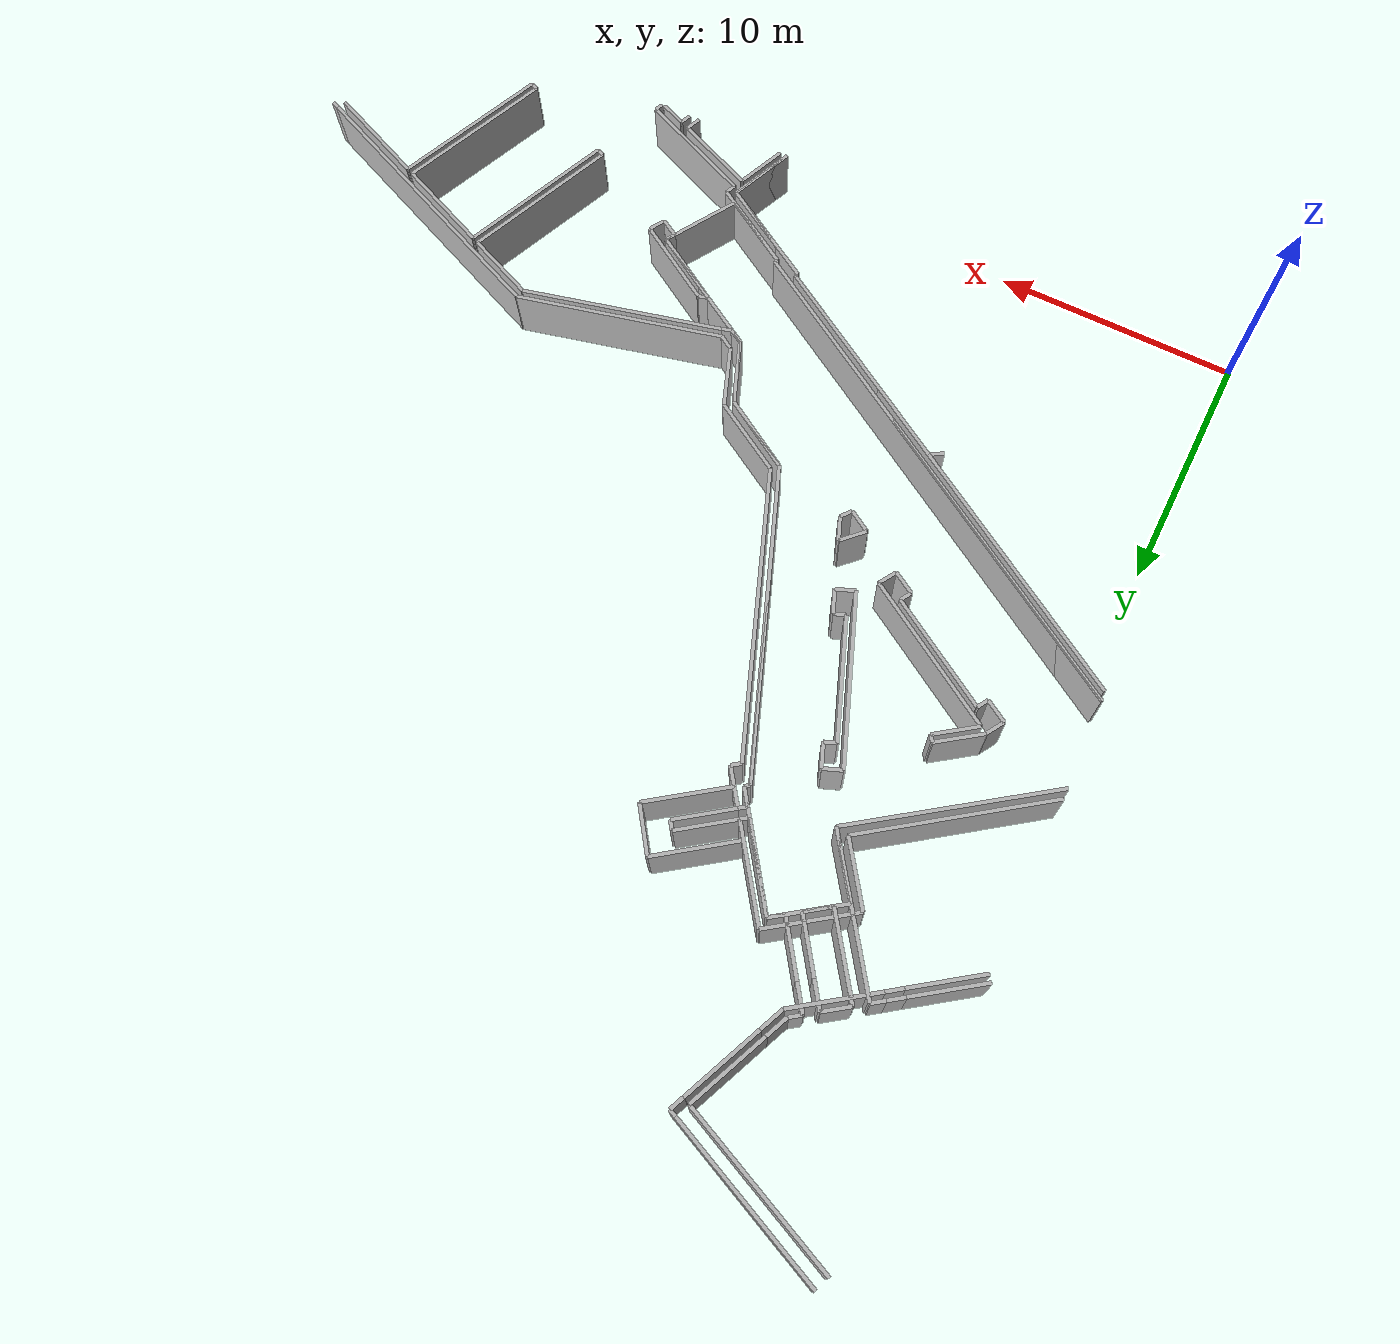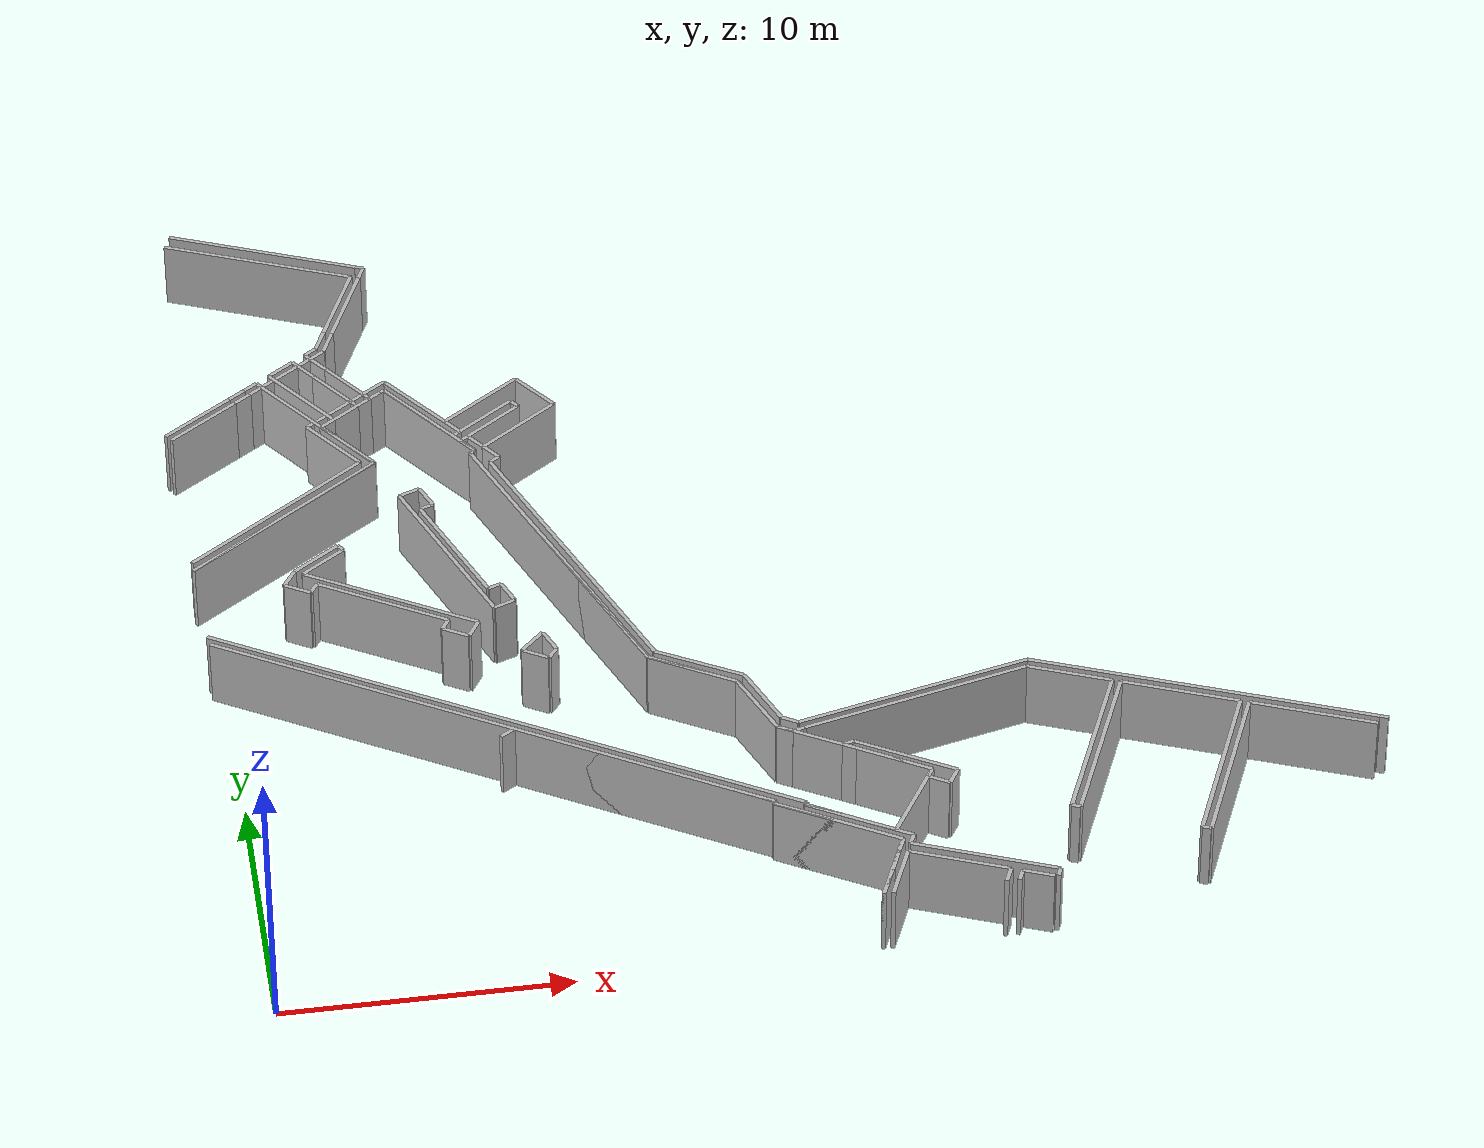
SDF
<sdf version="1.6">
 <model name="sps_1300">
  <static>1</static>
  <allow_auto_disable>0</allow_auto_disable>
  <link name="Wall177">
   <collision name="collision"><geometry><box><size>3.49937 0.15 2.5</size></box></geometry></collision>
   <visual name="visual">
    <geometry><box><size>3.49937 0.15 2.5</size></box></geometry>
    <transparency>0.0</transparency>
   </visual>
   <pose>22.96 1.26021 1.25 0 0 -0.398962</pose>
  </link>
  <link name="Wall178">
   <collision name="collision"><geometry><box><size>4.15 0.15 2.5</size></box></geometry></collision>
   <visual name="visual">
    <geometry><box><size>4.15 0.15 2.5</size></box></geometry>
    <transparency>0.0</transparency>
   </visual>
   <pose>31.8935 8.48128 1.25 0 0 -0.399139</pose>
  </link>
  <link name="Wall491">
   <collision name="collision"><geometry><box><size>3.29186 0.15 2.5</size></box></geometry></collision>
   <visual name="visual">
    <geometry><box><size>3.29186 0.15 2.5</size></box></geometry>
    <transparency>0.0</transparency>
   </visual>
   <pose>15.6525 12.1792 1.25 0 0 -0.547294</pose>
  </link>
  <link name="Wall492">
   <collision name="collision"><geometry><box><size>0.125288 0.15 2.5</size></box></geometry></collision>
   <visual name="visual">
    <geometry><box><size>0.125288 0.15 2.5</size></box></geometry>
    <transparency>0.0</transparency>
   </visual>
   <pose>17.3615 5.01298 1.25 0 -0 1.02361</pose>
  </link>
  <link name="Wall493">
   <collision name="collision"><geometry><box><size>20.9807 0.15 2.5</size></box></geometry></collision>
   <visual name="visual">
    <geometry><box><size>20.9807 0.15 2.5</size></box></geometry>
    <transparency>0.0</transparency>
   </visual>
   <pose>8.44585 10.5416 1.25 0 -0 2.59249</pose>
  </link>
  <link name="Wall496">
   <collision name="collision"><geometry><box><size>22.2262 0.15 2.5</size></box></geometry></collision>
   <visual name="visual">
    <geometry><box><size>22.2262 0.15 2.5</size></box></geometry>
    <transparency>0.0</transparency>
   </visual>
   <pose>8.93023 10.6325 1.25 0 -0 2.59411</pose>
  </link>
  <link name="Wall497">
   <collision name="collision"><geometry><box><size>4.63862 0.15 2.5</size></box></geometry></collision>
   <visual name="visual">
    <geometry><box><size>4.63862 0.15 2.5</size></box></geometry>
    <transparency>0.0</transparency>
   </visual>
   <pose>19.3144 3.7607 1.25 0 -0 2.5984</pose>
  </link>
  <link name="Wall498">
   <collision name="collision"><geometry><box><size>0.629992 0.15 2.5</size></box></geometry></collision>
   <visual name="visual">
    <geometry><box><size>0.629992 0.15 2.5</size></box></geometry>
    <transparency>0.0</transparency>
   </visual>
   <pose>24.4499 0.29026 1.25 0 0 -1.96974</pose>
  </link>
  <link name="Wall499">
   <collision name="collision"><geometry><box><size>0.46109 0.15 2.5</size></box></geometry></collision>
   <visual name="visual">
    <geometry><box><size>0.46109 0.15 2.5</size></box></geometry>
    <transparency>0.0</transparency>
   </visual>
   <pose>24.8511 0.21244 1.25 0 -0 1.17185</pose>
  </link>
  <link name="Wall500">
   <collision name="collision"><geometry><box><size>0.354194 0.15 2.5</size></box></geometry></collision>
   <visual name="visual">
    <geometry><box><size>0.354194 0.15 2.5</size></box></geometry>
    <transparency>0.0</transparency>
   </visual>
   <pose>26.133 0.163337 1.25 0 -0 1.174</pose>
  </link>
  <link name="Wall501">
   <collision name="collision"><geometry><box><size>2.98287 0.15 2.5</size></box></geometry></collision>
   <visual name="visual">
    <geometry><box><size>2.98287 0.15 2.5</size></box></geometry>
    <transparency>0.0</transparency>
   </visual>
   <pose>28.3314 9.98369 1.25 0 0 -0.39897</pose>
  </link>
  <link name="Wall502">
   <collision name="collision"><geometry><box><size>6.57523 0.15 2.5</size></box></geometry></collision>
   <visual name="visual">
    <geometry><box><size>6.57523 0.15 2.5</size></box></geometry>
    <transparency>0.0</transparency>
   </visual>
   <pose>28.7042 6.25838 1.25 0 -0 1.17174</pose>
  </link>
  <link name="Wall503">
   <collision name="collision"><geometry><box><size>0.299765 0.15 2.5</size></box></geometry></collision>
   <visual name="visual">
    <geometry><box><size>0.299765 0.15 2.5</size></box></geometry>
    <transparency>0.0</transparency>
   </visual>
   <pose>38.4624 6.10728 1.25 0 -0 2.74282</pose>
  </link>
  <link name="Wall783">
   <collision name="collision"><geometry><box><size>0.633892 0.15 2.5</size></box></geometry></collision>
   <visual name="visual">
    <geometry><box><size>0.633892 0.15 2.5</size></box></geometry>
    <transparency>0.0</transparency>
   </visual>
   <pose>18.5254 9.06819 1.25 0 0 -0.556058</pose>
  </link>
  <link name="Wall785">
   <collision name="collision"><geometry><box><size>8.22723 0.15 2.5</size></box></geometry></collision>
   <visual name="visual">
    <geometry><box><size>8.22723 0.15 2.5</size></box></geometry>
    <transparency>0.0</transparency>
   </visual>
   <pose>22.9618 9.58357 1.25 0 -0 0.240419</pose>
  </link>
  <link name="Wall1099">
   <collision name="collision"><geometry><box><size>3.48771 0.15 2.5</size></box></geometry></collision>
   <visual name="visual">
    <geometry><box><size>3.48771 0.15 2.5</size></box></geometry>
    <transparency>0.0</transparency>
   </visual>
   <pose>3.53826 28.6532 1.25 0 -0 2.19414</pose>
  </link>
  <link name="Wall1104">
   <collision name="collision"><geometry><box><size>3.29762 0.15 2.5</size></box></geometry></collision>
   <visual name="visual">
    <geometry><box><size>3.29762 0.15 2.5</size></box></geometry>
    <transparency>0.0</transparency>
   </visual>
   <pose>15.9271 12.448 1.25 0 0 -0.534338</pose>
  </link>
  <link name="Wall1105">
   <collision name="collision"><geometry><box><size>2.54139 0.15 2.5</size></box></geometry></collision>
   <visual name="visual">
    <geometry><box><size>2.54139 0.15 2.5</size></box></geometry>
    <transparency>0.0</transparency>
   </visual>
   <pose>17.8011 10.4219 1.25 0 0 -1.2045</pose>
  </link>
  <link name="Wall1107">
   <collision name="collision"><geometry><box><size>2.10533 0.15 2.5</size></box></geometry></collision>
   <visual name="visual">
    <geometry><box><size>2.10533 0.15 2.5</size></box></geometry>
    <transparency>0.0</transparency>
   </visual>
   <pose>20.9386 0.969947 1.25 0 -0 1.17172</pose>
  </link>
  <link name="Wall1108">
   <collision name="collision"><geometry><box><size>3.88986 0.15 2.5</size></box></geometry></collision>
   <visual name="visual">
    <geometry><box><size>3.88986 0.15 2.5</size></box></geometry>
    <transparency>0.0</transparency>
   </visual>
   <pose>20.0146 3.7285 1.25 0 -0 2.59425</pose>
  </link>
  <link name="Wall1109">
   <collision name="collision"><geometry><box><size>6.57457 0.15 2.5</size></box></geometry></collision>
   <visual name="visual">
    <geometry><box><size>6.57457 0.15 2.5</size></box></geometry>
    <transparency>0.0</transparency>
   </visual>
   <pose>32.5282 4.64589 1.25 0 0 -1.96986</pose>
  </link>
  <link name="Wall1110">
   <collision name="collision"><geometry><box><size>12.23 0.15 2.5</size></box></geometry></collision>
   <visual name="visual">
    <geometry><box><size>12.23 0.15 2.5</size></box></geometry>
    <transparency>0.0</transparency>
   </visual>
   <pose>32.687 8.53508 1.25 0 0 -0.397925</pose>
  </link>
  <link name="Wall1380">
   <collision name="collision"><geometry><box><size>2.78321 0.15 2.5</size></box></geometry></collision>
   <visual name="visual">
    <geometry><box><size>2.78321 0.15 2.5</size></box></geometry>
    <transparency>0.0</transparency>
   </visual>
   <pose>20.756 1.28095 1.25 0 -0 1.16932</pose>
  </link>
  <link name="Wall1381">
   <collision name="collision"><geometry><box><size>0.442862 0.15 2.5</size></box></geometry></collision>
   <visual name="visual">
    <geometry><box><size>0.442862 0.15 2.5</size></box></geometry>
    <transparency>0.0</transparency>
   </visual>
   <pose>21.5893 2.51231 1.25 0 -0 1.17148</pose>
  </link>
  <link name="Wall1383">
   <collision name="collision"><geometry><box><size>5.099 0.15 2.5</size></box></geometry></collision>
   <visual name="visual">
    <geometry><box><size>5.099 0.15 2.5</size></box></geometry>
    <transparency>0.0</transparency>
   </visual>
   <pose>23.8523 1.31749 1.25 0 -0 2.74245</pose>
  </link>
  <link name="Wall1385">
   <collision name="collision"><geometry><box><size>0.299709 0.15 2.5</size></box></geometry></collision>
   <visual name="visual">
    <geometry><box><size>0.299709 0.15 2.5</size></box></geometry>
    <transparency>0.0</transparency>
   </visual>
   <pose>27.2887 3.28728 1.25 0 0 -0.398848</pose>
  </link>
  <link name="Wall1386">
   <collision name="collision"><geometry><box><size>6.57504 0.15 2.5</size></box></geometry></collision>
   <visual name="visual">
    <geometry><box><size>6.57504 0.15 2.5</size></box></geometry>
    <transparency>0.0</transparency>
   </visual>
   <pose>32.805 4.52949 1.25 0 -0 1.17157</pose>
  </link>
  <link name="Wall1704">
   <collision name="collision"><geometry><box><size>1.09212 0.15 2.5</size></box></geometry></collision>
   <visual name="visual">
    <geometry><box><size>1.09212 0.15 2.5</size></box></geometry>
    <transparency>0.0</transparency>
   </visual>
   <pose>25.4437 0.21244 1.25 0 0 -0.399592</pose>
  </link>
  <link name="Wall1995">
   <collision name="collision"><geometry><box><size>2.70944 0.15 2.5</size></box></geometry></collision>
   <visual name="visual">
    <geometry><box><size>2.70944 0.15 2.5</size></box></geometry>
    <transparency>0.0</transparency>
   </visual>
   <pose>17.5489 10.06 1.25 0 0 -1.20009</pose>
  </link>
  <link name="Wall1996">
   <collision name="collision"><geometry><box><size>0.125288 0.15 2.5</size></box></geometry></collision>
   <visual name="visual">
    <geometry><box><size>0.125288 0.15 2.5</size></box></geometry>
    <transparency>0.0</transparency>
   </visual>
   <pose>18.3864 4.79417 1.25 0 -0 1.02361</pose>
  </link>
  <link name="Wall1997">
   <collision name="collision"><geometry><box><size>0.610297 0.15 2.5</size></box></geometry></collision>
   <visual name="visual">
    <geometry><box><size>0.610297 0.15 2.5</size></box></geometry>
    <transparency>0.0</transparency>
   </visual>
   <pose>18.3003 8.63859 1.25 0 0 -0.547023</pose>
  </link>
  <link name="Wall2000">
   <collision name="collision"><geometry><box><size>8.4949 0.15 2.5</size></box></geometry></collision>
   <visual name="visual">
    <geometry><box><size>8.4949 0.15 2.5</size></box></geometry>
    <transparency>0.0</transparency>
   </visual>
   <pose>22.9222 9.90279 1.25 0 -0 0.238125</pose>
  </link>
  <link name="Wall2001">
   <collision name="collision"><geometry><box><size>6.57552 0.15 2.5</size></box></geometry></collision>
   <visual name="visual">
    <geometry><box><size>6.57552 0.15 2.5</size></box></geometry>
    <transparency>0.0</transparency>
   </visual>
   <pose>28.4282 6.37489 1.25 0 0 -1.96987</pose>
  </link>
  <link name="Wall2334">
   <collision name="collision"><geometry><box><size>0.424171 0.15 2.5</size></box></geometry></collision>
   <visual name="visual">
    <geometry><box><size>0.424171 0.15 2.5</size></box></geometry>
    <transparency>0.0</transparency>
   </visual>
   <pose>18.7637 8.54198 1.25 0 -0 0.297177</pose>
  </link>
  <link name="Wall2335">
   <collision name="collision"><geometry><box><size>0.299709 0.15 2.5</size></box></geometry></collision>
   <visual name="visual">
    <geometry><box><size>0.299709 0.15 2.5</size></box></geometry>
    <transparency>0.0</transparency>
   </visual>
   <pose>31.389 1.5587 1.25 0 0 -0.398848</pose>
  </link>
  <link name="Wall2336">
   <collision name="collision"><geometry><box><size>4.4497 0.15 2.5</size></box></geometry></collision>
   <visual name="visual">
    <geometry><box><size>4.4497 0.15 2.5</size></box></geometry>
    <transparency>0.0</transparency>
   </visual>
   <pose>36.1327 6.69368 1.25 0 0 -0.399224</pose>
  </link>
  <link name="Wall12707">
   <collision name="collision"><geometry><box><size>8.4805 0.15 2.5</size></box></geometry></collision>
   <visual name="visual">
    <geometry><box><size>8.4805 0.15 2.5</size></box></geometry>
    <transparency>0.0</transparency>
   </visual>
   <pose>2.74746 22.4891 1.25 0 -0 0.623261</pose>
  </link>
  <link name="Wall12708">
   <collision name="collision"><geometry><box><size>2.79971 0.15 2.5</size></box></geometry></collision>
   <visual name="visual">
    <geometry><box><size>2.79971 0.15 2.5</size></box></geometry>
    <transparency>0.0</transparency>
   </visual>
   <pose>5.37334 26.1007 1.25 0 -0 2.19409</pose>
  </link>
  <link name="Wall12709">
   <collision name="collision"><geometry><box><size>2.99978 0.15 2.5</size></box></geometry></collision>
   <visual name="visual">
    <geometry><box><size>2.99978 0.15 2.5</size></box></geometry>
    <transparency>0.0</transparency>
   </visual>
   <pose>5.77395 28.113 1.25 0 -0 0.623454</pose>
  </link>
  <link name="Wall12710">
   <collision name="collision"><geometry><box><size>4.79995 0.15 2.5</size></box></geometry></collision>
   <visual name="visual">
    <geometry><box><size>4.79995 0.15 2.5</size></box></geometry>
    <transparency>0.0</transparency>
   </visual>
   <pose>8.39266 27.0401 1.25 0 0 -0.947449</pose>
  </link>
  <link name="Wall12711">
   <collision name="collision"><geometry><box><size>0.22534 0.15 2.5</size></box></geometry></collision>
   <visual name="visual">
    <geometry><box><size>0.22534 0.15 2.5</size></box></geometry>
    <transparency>0.0</transparency>
   </visual>
   <pose>9.70235 25.0255 1.25 0 0 -2.51564</pose>
  </link>
  <link name="Wall12712">
   <collision name="collision"><geometry><box><size>12.7933 0.15 2.5</size></box></geometry></collision>
   <visual name="visual">
    <geometry><box><size>12.7933 0.15 2.5</size></box></geometry>
    <transparency>0.0</transparency>
   </visual>
   <pose>11.9293 18.9977 1.25 0 0 -1.19994</pose>
  </link>
  <link name="Wall12713">
   <collision name="collision"><geometry><box><size>3.29175 0.15 2.5</size></box></geometry></collision>
   <visual name="visual">
    <geometry><box><size>3.29175 0.15 2.5</size></box></geometry>
    <transparency>0.0</transparency>
   </visual>
   <pose>15.6529 12.1793 1.25 0 0 -0.54738</pose>
  </link>
  <link name="Wall12714">
   <collision name="collision"><geometry><box><size>2.70929 0.15 2.5</size></box></geometry></collision>
   <visual name="visual">
    <geometry><box><size>2.70929 0.15 2.5</size></box></geometry>
    <transparency>0.0</transparency>
   </visual>
   <pose>17.5491 10.0601 1.25 0 0 -1.20004</pose>
  </link>
  <link name="Wall12715">
   <collision name="collision"><geometry><box><size>0.61034 0.15 2.5</size></box></geometry></collision>
   <visual name="visual">
    <geometry><box><size>0.61034 0.15 2.5</size></box></geometry>
    <transparency>0.0</transparency>
   </visual>
   <pose>18.3005 8.63869 1.25 0 0 -0.547331</pose>
  </link>
  <link name="Wall12716">
   <collision name="collision"><geometry><box><size>1.78766 0.15 2.5</size></box></geometry></collision>
   <visual name="visual">
    <geometry><box><size>1.78766 0.15 2.5</size></box></geometry>
    <transparency>0.0</transparency>
   </visual>
   <pose>19.3267 8.01857 1.25 0 0 -0.542287</pose>
  </link>
  <link name="Wall12717">
   <collision name="collision"><geometry><box><size>3.24953 0.15 2.5</size></box></geometry></collision>
   <visual name="visual">
    <geometry><box><size>3.24953 0.15 2.5</size></box></geometry>
    <transparency>0.0</transparency>
   </visual>
   <pose>21.477 6.70729 1.25 0 0 -0.550528</pose>
  </link>
  <link name="Wall12718">
   <collision name="collision"><geometry><box><size>0.399737 0.15 2.5</size></box></geometry></collision>
   <visual name="visual">
    <geometry><box><size>0.399737 0.15 2.5</size></box></geometry>
    <transparency>0.0</transparency>
   </visual>
   <pose>22.7579 5.68651 1.25 0 0 -2.11682</pose>
  </link>
  <link name="Wall12719">
   <collision name="collision"><geometry><box><size>2.89947 0.15 2.5</size></box></geometry></collision>
   <visual name="visual">
    <geometry><box><size>2.89947 0.15 2.5</size></box></geometry>
    <transparency>0.0</transparency>
   </visual>
   <pose>21.8996 4.27779 1.25 0 0 -2.11818</pose>
  </link>
  <link name="Wall12720">
   <collision name="collision"><geometry><box><size>3.26869 0.15 2.5</size></box></geometry></collision>
   <visual name="visual">
    <geometry><box><size>3.26869 0.15 2.5</size></box></geometry>
    <transparency>0.0</transparency>
   </visual>
   <pose>19.7494 3.8904 1.25 0 -0 2.59427</pose>
  </link>
  <link name="Wall12721">
   <collision name="collision"><geometry><box><size>0.125288 0.15 2.5</size></box></geometry></collision>
   <visual name="visual">
    <geometry><box><size>0.125288 0.15 2.5</size></box></geometry>
    <transparency>0.0</transparency>
   </visual>
   <pose>18.3864 4.79442 1.25 0 -0 1.02361</pose>
  </link>
  <link name="Wall12722">
   <collision name="collision"><geometry><box><size>22.2261 0.15 2.5</size></box></geometry></collision>
   <visual name="visual">
    <geometry><box><size>22.2261 0.15 2.5</size></box></geometry>
    <transparency>0.0</transparency>
   </visual>
   <pose>8.93023 10.6326 1.25 0 -0 2.59412</pose>
  </link>
  <link name="Wall15450">
   <collision name="collision"><geometry><box><size>7.87621 0.15 2.5</size></box></geometry></collision>
   <visual name="visual">
    <geometry><box><size>7.87621 0.15 2.5</size></box></geometry>
    <transparency>0.0</transparency>
   </visual>
   <pose>2.48925 22.7498 1.25 0 -0 0.62805</pose>
  </link>
  <link name="Wall15451">
   <collision name="collision"><geometry><box><size>2.77886 0.15 2.5</size></box></geometry></collision>
   <visual name="visual">
    <geometry><box><size>2.77886 0.15 2.5</size></box></geometry>
    <transparency>0.0</transparency>
   </visual>
   <pose>4.86477 26.1918 1.25 0 -0 2.19415</pose>
  </link>
  <link name="Wall15452">
   <collision name="collision"><geometry><box><size>3.68895 0.15 2.5</size></box></geometry></collision>
   <visual name="visual">
    <geometry><box><size>3.68895 0.15 2.5</size></box></geometry>
    <transparency>0.0</transparency>
   </visual>
   <pose>5.55486 28.3916 1.25 0 -0 0.619988</pose>
  </link>
  <link name="Wall15453">
   <collision name="collision"><geometry><box><size>3.98487 0.15 2.5</size></box></geometry></collision>
   <visual name="visual">
    <geometry><box><size>3.98487 0.15 2.5</size></box></geometry>
    <transparency>0.0</transparency>
   </visual>
   <pose>8.22857 27.8524 1.25 0 0 -0.941614</pose>
  </link>
  <link name="Wall22045">
   <collision name="collision"><geometry><box><size>1.00012 0.15 2.5</size></box></geometry></collision>
   <visual name="visual">
    <geometry><box><size>1.00012 0.15 2.5</size></box></geometry>
    <transparency>0.0</transparency>
   </visual>
   <pose>2.77953 18.482 1.25 0 0 -0.547013</pose>
  </link>
  <link name="Wall22046">
   <collision name="collision"><geometry><box><size>0.500063 0.15 2.5</size></box></geometry></collision>
   <visual name="visual">
    <geometry><box><size>0.500063 0.15 2.5</size></box></geometry>
    <transparency>0.0</transparency>
   </visual>
   <pose>3.33675 18.4354 1.25 0 -0 1.02343</pose>
  </link>
  <link name="Wall22047">
   <collision name="collision"><geometry><box><size>5.00003 0.15 2.5</size></box></geometry></collision>
   <visual name="visual">
    <geometry><box><size>5.00003 0.15 2.5</size></box></geometry>
    <transparency>0.0</transparency>
   </visual>
   <pose>5.60146 17.3475 1.25 0 0 -0.5475</pose>
  </link>
  <link name="Wall22048">
   <collision name="collision"><geometry><box><size>0.500092 0.15 2.5</size></box></geometry></collision>
   <visual name="visual">
    <geometry><box><size>0.500092 0.15 2.5</size></box></geometry>
    <transparency>0.0</transparency>
   </visual>
   <pose>7.60604 15.8325 1.25 0 0 -2.11756</pose>
  </link>
  <link name="Wall22049">
   <collision name="collision"><geometry><box><size>0.999859 0.15 2.5</size></box></geometry></collision>
   <visual name="visual">
    <geometry><box><size>0.999859 0.15 2.5</size></box></geometry>
    <transparency>0.0</transparency>
   </visual>
   <pose>7.90273 15.3584 1.25 0 0 -0.548104</pose>
  </link>
  <link name="Wall22050">
   <collision name="collision"><geometry><box><size>0.800548 0.15 2.5</size></box></geometry></collision>
   <visual name="visual">
    <geometry><box><size>0.800548 0.15 2.5</size></box></geometry>
    <transparency>0.0</transparency>
   </visual>
   <pose>8.53774 15.4397 1.25 0 -0 1.02345</pose>
  </link>
  <link name="Wall22051">
   <collision name="collision"><geometry><box><size>6.67435 0.15 2.5</size></box></geometry></collision>
   <visual name="visual">
    <geometry><box><size>6.67435 0.15 2.5</size></box></geometry>
    <transparency>0.0</transparency>
   </visual>
   <pose>5.89657 17.5185 1.25 0 -0 2.59416</pose>
  </link>
  <link name="Wall22052">
   <collision name="collision"><geometry><box><size>1.87382 0.15 2.5</size></box></geometry></collision>
   <visual name="visual">
    <geometry><box><size>1.87382 0.15 2.5</size></box></geometry>
    <transparency>0.0</transparency>
   </visual>
   <pose>3.80767 19.8026 1.25 0 -0 0.623559</pose>
  </link>
  <link name="Wall22053">
   <collision name="collision"><geometry><box><size>0.299494 0.15 2.5</size></box></geometry></collision>
   <visual name="visual">
    <geometry><box><size>0.299494 0.15 2.5</size></box></geometry>
    <transparency>0.0</transparency>
   </visual>
   <pose>4.48046 20.471 1.25 0 -0 2.1973</pose>
  </link>
  <link name="Wall22054">
   <collision name="collision"><geometry><box><size>1.99912 0.15 2.5</size></box></geometry></collision>
   <visual name="visual">
    <geometry><box><size>1.99912 0.15 2.5</size></box></geometry>
    <transparency>0.0</transparency>
   </visual>
   <pose>3.58095 20.009 1.25 0 0 -2.51848</pose>
  </link>
  <link name="Wall22055">
   <collision name="collision"><geometry><box><size>0.800644 0.15 2.5</size></box></geometry></collision>
   <visual name="visual">
    <geometry><box><size>0.800644 0.15 2.5</size></box></geometry>
    <transparency>0.0</transparency>
   </visual>
   <pose>2.56084 19.0839 1.25 0 0 -2.11834</pose>
  </link>
  <link name="Wall22056">
   <collision name="collision"><geometry><box><size>0.672337 0.15 2.5</size></box></geometry></collision>
   <visual name="visual">
    <geometry><box><size>0.672337 0.15 2.5</size></box></geometry>
    <transparency>0.0</transparency>
   </visual>
   <pose>6.71914 28.7926 1.25 0 -0 0.623637</pose>
  </link>
  <link name="Wall22057">
   <collision name="collision"><geometry><box><size>3.63868 0.15 2.5</size></box></geometry></collision>
   <visual name="visual">
    <geometry><box><size>3.63868 0.15 2.5</size></box></geometry>
    <transparency>0.0</transparency>
   </visual>
   <pose>8.05404 27.5117 1.25 0 0 -0.947476</pose>
  </link>
  <link name="Wall22070">
   <collision name="collision"><geometry><box><size>1.15134 0.15 2.5</size></box></geometry></collision>
   <visual name="visual">
    <geometry><box><size>1.15134 0.15 2.5</size></box></geometry>
    <transparency>0.0</transparency>
   </visual>
   <pose>10.4444 14.4647 1.25 0 -0 0.785736</pose>
  </link>
  <link name="Wall22071">
   <collision name="collision"><geometry><box><size>0.999338 0.15 2.5</size></box></geometry></collision>
   <visual name="visual">
    <geometry><box><size>0.999338 0.15 2.5</size></box></geometry>
    <transparency>0.0</transparency>
   </visual>
   <pose>11.0324 14.4062 1.25 0 0 -1.19993</pose>
  </link>
  <link name="Wall22072">
   <collision name="collision"><geometry><box><size>0.51705 0.15 2.5</size></box></geometry></collision>
   <visual name="visual">
    <geometry><box><size>0.51705 0.15 2.5</size></box></geometry>
    <transparency>0.0</transparency>
   </visual>
   <pose>11.0523 13.7384 1.25 0 0 -2.24403</pose>
  </link>
  <link name="Wall22073">
   <collision name="collision"><geometry><box><size>1.00019 0.15 2.5</size></box></geometry></collision>
   <visual name="visual">
    <geometry><box><size>1.00019 0.15 2.5</size></box></geometry>
    <transparency>0.0</transparency>
   </visual>
   <pose>10.4643 13.7969 1.25 0 -0 2.59341</pose>
  </link>
  <link name="Wall26305">
   <collision name="collision"><geometry><box><size>6.99927 0.15 2.5</size></box></geometry></collision>
   <visual name="visual">
    <geometry><box><size>6.99927 0.15 2.5</size></box></geometry>
    <transparency>0.0</transparency>
   </visual>
   <pose>8.11224 19.7086 1.25 0 -0 1.94168</pose>
  </link>
  <link name="Wall26306">
   <collision name="collision"><geometry><box><size>0.800547 0.15 2.5</size></box></geometry></collision>
   <visual name="visual">
    <geometry><box><size>0.800547 0.15 2.5</size></box></geometry>
    <transparency>0.0</transparency>
   </visual>
   <pose>7.21676 23.1157 1.25 0 -0 0.371799</pose>
  </link>
  <link name="Wall26307">
   <collision name="collision"><geometry><box><size>1.00071 0.15 2.5</size></box></geometry></collision>
   <visual name="visual">
    <geometry><box><size>1.00071 0.15 2.5</size></box></geometry>
    <transparency>0.0</transparency>
   </visual>
   <pose>7.77087 22.7947 1.25 0 0 -1.20027</pose>
  </link>
  <link name="Wall26308">
   <collision name="collision"><geometry><box><size>0.500566 0.15 2.5</size></box></geometry></collision>
   <visual name="visual">
    <geometry><box><size>0.500566 0.15 2.5</size></box></geometry>
    <transparency>0.0</transparency>
   </visual>
   <pose>7.71874 22.2377 1.25 0 0 -2.77116</pose>
  </link>
  <link name="Wall26309">
   <collision name="collision"><geometry><box><size>4.99958 0.15 2.5</size></box></geometry></collision>
   <visual name="visual">
    <geometry><box><size>4.99958 0.15 2.5</size></box></geometry>
    <transparency>0.0</transparency>
   </visual>
   <pose>8.39175 19.8174 1.25 0 0 -1.19979</pose>
  </link>
  <link name="Wall26310">
   <collision name="collision"><geometry><box><size>0.500339 0.15 2.5</size></box></geometry></collision>
   <visual name="visual">
    <geometry><box><size>0.500339 0.15 2.5</size></box></geometry>
    <transparency>0.0</transparency>
   </visual>
   <pose>9.53124 17.5783 1.25 0 -0 0.370607</pose>
  </link>
  <link name="Wall26311">
   <collision name="collision"><geometry><box><size>1.00073 0.15 2.5</size></box></geometry></collision>
   <visual name="visual">
    <geometry><box><size>1.00073 0.15 2.5</size></box></geometry>
    <transparency>0.0</transparency>
   </visual>
   <pose>9.94564 17.2025 1.25 0 0 -1.20021</pose>
  </link>
  <link name="Wall26312">
   <collision name="collision"><geometry><box><size>0.800291 0.15 2.5</size></box></geometry></collision>
   <visual name="visual">
    <geometry><box><size>0.800291 0.15 2.5</size></box></geometry>
    <transparency>0.0</transparency>
   </visual>
   <pose>9.75375 16.5915 1.25 0 0 -2.77188</pose>
  </link>
  <link name="Wall26313">
   <collision name="collision"><geometry><box><size>0.761027 0.15 2.5</size></box></geometry></collision>
   <visual name="visual">
    <geometry><box><size>0.761027 0.15 2.5</size></box></geometry>
    <transparency>0.0</transparency>
   </visual>
   <pose>9.57183 25.4006 1.25 0 0 -0.947218</pose>
  </link>
  <link name="Wall26314">
   <collision name="collision"><geometry><box><size>0.225488 0.15 2.5</size></box></geometry></collision>
   <visual name="visual">
    <geometry><box><size>0.225488 0.15 2.5</size></box></geometry>
    <transparency>0.0</transparency>
   </visual>
   <pose>9.70263 25.0257 1.25 0 0 -2.51612</pose>
  </link>
  <link name="Wall26315">
   <collision name="collision"><geometry><box><size>12.7934 0.15 2.5</size></box></geometry></collision>
   <visual name="visual">
    <geometry><box><size>12.7934 0.15 2.5</size></box></geometry>
    <transparency>0.0</transparency>
   </visual>
   <pose>11.9293 18.9978 1.25 0 0 -1.19996</pose>
  </link>
  <link name="Wall28779">
   <collision name="collision"><geometry><box><size>0.614822 0.15 2.5</size></box></geometry></collision>
   <visual name="visual">
    <geometry><box><size>0.614822 0.15 2.5</size></box></geometry>
    <transparency>0.0</transparency>
   </visual>
   <pose>8.99377 9.8853 1.25 0 -0 0.549749</pose>
  </link>
  <link name="Wall28780">
   <collision name="collision"><geometry><box><size>9.54069 0.15 2.5</size></box></geometry></collision>
   <visual name="visual">
    <geometry><box><size>9.54069 0.15 2.5</size></box></geometry>
    <transparency>0.0</transparency>
   </visual>
   <pose>13.325 7.5562 1.25 0 0 -0.549095</pose>
  </link>
  <link name="Wall28781">
   <collision name="collision"><geometry><box><size>0.125288 0.15 2.5</size></box></geometry></collision>
   <visual name="visual">
    <geometry><box><size>0.125288 0.15 2.5</size></box></geometry>
    <transparency>0.0</transparency>
   </visual>
   <pose>17.3615 5.01298 1.25 0 0 -2.11798</pose>
  </link>
  <link name="Wall28782">
   <collision name="collision"><geometry><box><size>4.63862 0.15 2.5</size></box></geometry></collision>
   <visual name="visual">
    <geometry><box><size>4.63862 0.15 2.5</size></box></geometry>
    <transparency>0.0</transparency>
   </visual>
   <pose>19.3144 3.7607 1.25 0 0 -0.543195</pose>
  </link>
  <link name="Wall28783">
   <collision name="collision"><geometry><box><size>2.78321 0.15 2.5</size></box></geometry></collision>
   <visual name="visual">
    <geometry><box><size>2.78321 0.15 2.5</size></box></geometry>
    <transparency>0.0</transparency>
   </visual>
   <pose>20.756 1.28095 1.25 0 0 -1.97227</pose>
  </link>
  <link name="Wall30924">
   <collision name="collision"><geometry><box><size>1.12758 0.15 2.5</size></box></geometry></collision>
   <visual name="visual">
    <geometry><box><size>1.12758 0.15 2.5</size></box></geometry>
    <transparency>0.0</transparency>
   </visual>
   <pose>5.50173 27.9169 1.25 0 -0 0.623515</pose>
  </link>
  <link name="Wall30925">
   <collision name="collision"><geometry><box><size>0.353149 0.15 2.5</size></box></geometry></collision>
   <visual name="visual">
    <geometry><box><size>0.353149 0.15 2.5</size></box></geometry>
    <transparency>0.0</transparency>
   </visual>
   <pose>5.85683 28.3898 1.25 0 -0 2.19082</pose>
  </link>
  <link name="Wall30926">
   <collision name="collision"><geometry><box><size>1.98631 0.15 2.5</size></box></geometry></collision>
   <visual name="visual">
    <geometry><box><size>1.98631 0.15 2.5</size></box></geometry>
    <transparency>0.0</transparency>
   </visual>
   <pose>5.17715 29.3418 1.25 0 -0 2.19083</pose>
  </link>
  <link name="Wall30927">
   <collision name="collision"><geometry><box><size>0.849813 0.15 2.5</size></box></geometry></collision>
   <visual name="visual">
    <geometry><box><size>0.849813 0.15 2.5</size></box></geometry>
    <transparency>0.0</transparency>
   </visual>
   <pose>4.35326 30.496 1.25 0 -0 2.19054</pose>
  </link>
  <link name="Wall30928">
   <collision name="collision"><geometry><box><size>0.29836 0.15 2.5</size></box></geometry></collision>
   <visual name="visual">
    <geometry><box><size>0.29836 0.15 2.5</size></box></geometry>
    <transparency>0.0</transparency>
   </visual>
   <pose>4.01977 30.9633 1.25 0 -0 2.19097</pose>
  </link>
  <link name="Wall30929">
   <collision name="collision"><geometry><box><size>1.13932 0.15 2.5</size></box></geometry></collision>
   <visual name="visual">
    <geometry><box><size>1.13932 0.15 2.5</size></box></geometry>
    <transparency>0.0</transparency>
   </visual>
   <pose>3.47057 30.7521 1.25 0 0 -2.51816</pose>
  </link>
  <link name="Wall30930">
   <collision name="collision"><geometry><box><size>3.48771 0.15 2.5</size></box></geometry></collision>
   <visual name="visual">
    <geometry><box><size>3.48771 0.15 2.5</size></box></geometry>
    <transparency>0.0</transparency>
   </visual>
   <pose>4.02605 29.0036 1.25 0 0 -0.947457</pose>
  </link>
  <link name="Wall30931">
   <collision name="collision"><geometry><box><size>0.351042 0.15 2.5</size></box></geometry></collision>
   <visual name="visual">
    <geometry><box><size>0.351042 0.15 2.5</size></box></geometry>
    <transparency>0.0</transparency>
   </visual>
   <pose>6.34454 28.7392 1.25 0 -0 2.1902</pose>
  </link>
  <link name="Wall30932">
   <collision name="collision"><geometry><box><size>1.98621 0.15 2.5</size></box></geometry></collision>
   <visual name="visual">
    <geometry><box><size>1.98621 0.15 2.5</size></box></geometry>
    <transparency>0.0</transparency>
   </visual>
   <pose>5.66564 29.6904 1.25 0 -0 2.19076</pose>
  </link>
  <link name="Wall30933">
   <collision name="collision"><geometry><box><size>0.84982 0.15 2.5</size></box></geometry></collision>
   <visual name="visual">
    <geometry><box><size>0.84982 0.15 2.5</size></box></geometry>
    <transparency>0.0</transparency>
   </visual>
   <pose>4.84176 30.8445 1.25 0 -0 2.1908</pose>
  </link>
  <link name="Wall30934">
   <collision name="collision"><geometry><box><size>0.300361 0.15 2.5</size></box></geometry></collision>
   <visual name="visual">
    <geometry><box><size>0.300361 0.15 2.5</size></box></geometry>
    <transparency>0.0</transparency>
   </visual>
   <pose>4.50756 31.3125 1.25 0 -0 2.19121</pose>
  </link>
  <link name="Wall30935">
   <collision name="collision"><geometry><box><size>0.815508 0.15 2.5</size></box></geometry></collision>
   <visual name="visual">
    <geometry><box><size>0.815508 0.15 2.5</size></box></geometry>
    <transparency>0.0</transparency>
   </visual>
   <pose>9.87646 25.5885 1.25 0 0 -0.94216</pose>
  </link>
  <link name="Wall30936">
   <collision name="collision"><geometry><box><size>0.799757 0.15 2.5</size></box></geometry></collision>
   <visual name="visual">
    <geometry><box><size>0.799757 0.15 2.5</size></box></geometry>
    <transparency>0.0</transparency>
   </visual>
   <pose>10.3514 24.9353 1.25 0 0 -0.941994</pose>
  </link>
  <link name="Wall30937">
   <collision name="collision"><geometry><box><size>0.42475 0.15 2.5</size></box></geometry></collision>
   <visual name="visual">
    <geometry><box><size>0.42475 0.15 2.5</size></box></geometry>
    <transparency>0.0</transparency>
   </visual>
   <pose>10.4149 24.4869 1.25 0 0 -2.51229</pose>
  </link>
  <link name="Wall30938">
   <collision name="collision"><geometry><box><size>11.8671 0.15 2.5</size></box></geometry></collision>
   <visual name="visual">
    <geometry><box><size>11.8671 0.15 2.5</size></box></geometry>
    <transparency>0.0</transparency>
   </visual>
   <pose>12.3758 18.8248 1.25 0 0 -1.20317</pose>
  </link>
  <link name="Wall35093">
   <collision name="collision"><geometry><box><size>8.48035 0.15 2.5</size></box></geometry></collision>
   <visual name="visual">
    <geometry><box><size>8.48035 0.15 2.5</size></box></geometry>
    <transparency>0.0</transparency>
   </visual>
   <pose>2.74798 22.4891 1.25 0 -0 0.623274</pose>
  </link>
  <link name="Wall35094">
   <collision name="collision"><geometry><box><size>2.79996 0.15 2.5</size></box></geometry></collision>
   <visual name="visual">
    <geometry><box><size>2.79996 0.15 2.5</size></box></geometry>
    <transparency>0.0</transparency>
   </visual>
   <pose>5.37368 26.1008 1.25 0 -0 2.1941</pose>
  </link>
  <link name="Wall35095">
   <collision name="collision"><geometry><box><size>0.526919 0.15 2.5</size></box></geometry></collision>
   <visual name="visual">
    <geometry><box><size>0.526919 0.15 2.5</size></box></geometry>
    <transparency>0.0</transparency>
   </visual>
   <pose>4.63406 31.5886 1.25 0 -0 0.622835</pose>
  </link>
  <link name="Wall35096">
   <collision name="collision"><geometry><box><size>0.984897 0.15 2.5</size></box></geometry></collision>
   <visual name="visual">
    <geometry><box><size>0.984897 0.15 2.5</size></box></geometry>
    <transparency>0.0</transparency>
   </visual>
   <pose>5.03994 32.1958 1.25 0 -0 1.17052</pose>
  </link>
  <link name="Wall35097">
   <collision name="collision"><geometry><box><size>3.40799 0.15 2.5</size></box></geometry></collision>
   <visual name="visual">
    <geometry><box><size>3.40799 0.15 2.5</size></box></geometry>
    <transparency>0.0</transparency>
   </visual>
   <pose>5.89654 34.2183 1.25 0 -0 1.17007</pose>
  </link>
  <link name="Wall35098">
   <collision name="collision"><geometry><box><size>7.13143 0.15 2.5</size></box></geometry></collision>
   <visual name="visual">
    <geometry><box><size>7.13143 0.15 2.5</size></box></geometry>
    <transparency>0.0</transparency>
   </visual>
   <pose>3.28765 37.2008 1.25 0 -0 2.73399</pose>
  </link>
  <link name="Wall35102">
   <collision name="collision"><geometry><box><size>2.99999 0.15 2.5</size></box></geometry></collision>
   <visual name="visual">
    <geometry><box><size>2.99999 0.15 2.5</size></box></geometry>
    <transparency>0.0</transparency>
   </visual>
   <pose>0.433158 28.1989 1.25 0 -0 0.623305</pose>
  </link>
  <link name="Wall35103">
   <collision name="collision"><geometry><box><size>0.707372 0.15 2.5</size></box></geometry></collision>
   <visual name="visual">
    <geometry><box><size>0.707372 0.15 2.5</size></box></geometry>
    <transparency>0.0</transparency>
   </visual>
   <pose>1.93829 29.2809 1.25 0 -0 0.623188</pose>
  </link>
  <link name="Wall35104">
   <collision name="collision"><geometry><box><size>3.53017 0.15 2.5</size></box></geometry></collision>
   <visual name="visual">
    <geometry><box><size>3.53017 0.15 2.5</size></box></geometry>
    <transparency>0.0</transparency>
   </visual>
   <pose>3.65868 30.5176 1.25 0 -0 0.623274</pose>
  </link>
  <link name="Wall35105">
   <collision name="collision"><geometry><box><size>1.06887 0.15 2.5</size></box></geometry></collision>
   <visual name="visual">
    <geometry><box><size>1.06887 0.15 2.5</size></box></geometry>
    <transparency>0.0</transparency>
   </visual>
   <pose>5.30007 32.0401 1.25 0 -0 1.17065</pose>
  </link>
  <link name="Wall35106">
   <collision name="collision"><geometry><box><size>3.40806 0.15 2.5</size></box></geometry></collision>
   <visual name="visual">
    <geometry><box><size>3.40806 0.15 2.5</size></box></geometry>
    <transparency>0.0</transparency>
   </visual>
   <pose>6.17306 34.1013 1.25 0 -0 1.17002</pose>
  </link>
  <link name="Wall35107">
   <collision name="collision"><geometry><box><size>0.598024 0.15 2.5</size></box></geometry></collision>
   <visual name="visual">
    <geometry><box><size>0.598024 0.15 2.5</size></box></geometry>
    <transparency>0.0</transparency>
   </visual>
   <pose>6.95455 35.9456 1.25 0 -0 1.16986</pose>
  </link>
  <link name="Wall35108">
   <collision name="collision"><geometry><box><size>0.296442 0.15 2.5</size></box></geometry></collision>
   <visual name="visual">
    <geometry><box><size>0.296442 0.15 2.5</size></box></geometry>
    <transparency>0.0</transparency>
   </visual>
   <pose>6.93514 36.2796 1.25 0 -0 2.73451</pose>
  </link>
  <link name="Wall35109">
   <collision name="collision"><geometry><box><size>7.13646 0.15 2.5</size></box></geometry></collision>
   <visual name="visual">
    <geometry><box><size>7.13646 0.15 2.5</size></box></geometry>
    <transparency>0.0</transparency>
   </visual>
   <pose>3.52315 37.7528 1.25 0 -0 2.73398</pose>
  </link>
  <link name="Wall35110">
   <collision name="collision"><geometry><box><size>0.35476 0.15 2.5</size></box></geometry></collision>
   <visual name="visual">
    <geometry><box><size>0.35476 0.15 2.5</size></box></geometry>
    <transparency>0.0</transparency>
   </visual>
   <pose>9.49303 25.8141 1.25 0 -0 0.62929</pose>
  </link>
  <link name="Wall35111">
   <collision name="collision"><geometry><box><size>2.44616 0.15 2.5</size></box></geometry></collision>
   <visual name="visual">
    <geometry><box><size>2.44616 0.15 2.5</size></box></geometry>
    <transparency>0.0</transparency>
   </visual>
   <pose>10.6254 26.6382 1.25 0 -0 0.629114</pose>
  </link>
  <link name="Wall35112">
   <collision name="collision"><geometry><box><size>0.400135 0.15 2.5</size></box></geometry></collision>
   <visual name="visual">
    <geometry><box><size>0.400135 0.15 2.5</size></box></geometry>
    <transparency>0.0</transparency>
   </visual>
   <pose>11.4976 27.5204 1.25 0 -0 2.19358</pose>
  </link>
  <link name="Wall35113">
   <collision name="collision"><geometry><box><size>2.44868 0.15 2.5</size></box></geometry></collision>
   <visual name="visual">
    <geometry><box><size>2.44868 0.15 2.5</size></box></geometry>
    <transparency>0.0</transparency>
   </visual>
   <pose>10.391 26.9624 1.25 0 0 -2.51242</pose>
  </link>
  <link name="Wall35114">
   <collision name="collision"><geometry><box><size>0.352247 0.15 2.5</size></box></geometry></collision>
   <visual name="visual">
    <geometry><box><size>0.352247 0.15 2.5</size></box></geometry>
    <transparency>0.0</transparency>
   </visual>
   <pose>9.25866 26.1383 1.25 0 0 -2.51268</pose>
  </link>
  <link name="Wall35115">
   <collision name="collision"><geometry><box><size>0.399989 0.15 2.5</size></box></geometry></collision>
   <visual name="visual">
    <geometry><box><size>0.399989 0.15 2.5</size></box></geometry>
    <transparency>0.0</transparency>
   </visual>
   <pose>22.758 5.6866 1.25 0 -0 1.02462</pose>
  </link>
  <link name="Wall35116">
   <collision name="collision"><geometry><box><size>3.24959 0.15 2.5</size></box></geometry></collision>
   <visual name="visual">
    <geometry><box><size>3.24959 0.15 2.5</size></box></geometry>
    <transparency>0.0</transparency>
   </visual>
   <pose>21.477 6.70738 1.25 0 -0 2.59114</pose>
  </link>
  <link name="Wall35117">
   <collision name="collision"><geometry><box><size>0.404136 0.15 2.5</size></box></geometry></collision>
   <visual name="visual">
    <geometry><box><size>0.404136 0.15 2.5</size></box></geometry>
    <transparency>0.0</transparency>
   </visual>
   <pose>20.2877 7.60838 1.25 0 -0 0.255748</pose>
  </link>
  <link name="Wall35118">
   <collision name="collision"><geometry><box><size>3.76965 0.15 2.5</size></box></geometry></collision>
   <visual name="visual">
    <geometry><box><size>3.76965 0.15 2.5</size></box></geometry>
    <transparency>0.0</transparency>
   </visual>
   <pose>22.0923 6.67799 1.25 0 0 -0.54772</pose>
  </link>
  <link name="Wall35119">
   <collision name="collision"><geometry><box><size>0.699402 0.15 2.5</size></box></geometry></collision>
   <visual name="visual">
    <geometry><box><size>0.699402 0.15 2.5</size></box></geometry>
    <transparency>0.0</transparency>
   </visual>
   <pose>23.5192 5.39799 1.25 0 0 -2.1188</pose>
  </link>
  <link name="Wall35120">
   <collision name="collision"><geometry><box><size>0.799805 0.15 2.5</size></box></geometry></collision>
   <visual name="visual">
    <geometry><box><size>0.799805 0.15 2.5</size></box></geometry>
    <transparency>0.0</transparency>
   </visual>
   <pose>22.9956 5.3076 1.25 0 -0 2.5943</pose>
  </link>
  <link name="Wall38064">
   <collision name="collision"><geometry><box><size>3.00008 0.15 2.5</size></box></geometry></collision>
   <visual name="visual">
    <geometry><box><size>3.00008 0.15 2.5</size></box></geometry>
    <transparency>0.0</transparency>
   </visual>
   <pose>0.257774 28.4424 1.25 0 -0 0.623383</pose>
  </link>
  <link name="Wall38065">
   <collision name="collision"><geometry><box><size>0.707521 0.15 2.5</size></box></geometry></collision>
   <visual name="visual">
    <geometry><box><size>0.707521 0.15 2.5</size></box></geometry>
    <transparency>0.0</transparency>
   </visual>
   <pose>1.76296 29.5245 1.25 0 -0 0.623037</pose>
  </link>
  <link name="Wall38066">
   <collision name="collision"><geometry><box><size>0.579502 0.15 2.5</size></box></geometry></collision>
   <visual name="visual">
    <geometry><box><size>0.579502 0.15 2.5</size></box></geometry>
    <transparency>0.0</transparency>
   </visual>
   <pose>2.28554 29.9 1.25 0 -0 0.623151</pose>
  </link>
  <link name="Wall38067">
   <collision name="collision"><geometry><box><size>3.4413 0.15 2.5</size></box></geometry></collision>
   <visual name="visual">
    <geometry><box><size>3.4413 0.15 2.5</size></box></geometry>
    <transparency>0.0</transparency>
   </visual>
   <pose>11.5073 26.2712 1.25 0 -0 0.629138</pose>
  </link>
  <link name="Wall38068">
   <collision name="collision"><geometry><box><size>0.0321926 0.15 2.5</size></box></geometry></collision>
   <visual name="visual">
    <geometry><box><size>0.0321926 0.15 2.5</size></box></geometry>
    <transparency>0.0</transparency>
   </visual>
   <pose>12.889 27.2967 1.25 0 -0 2.2014</pose>
  </link>
  <link name="Wall38069">
   <collision name="collision"><geometry><box><size>1.96795 0.15 2.5</size></box></geometry></collision>
   <visual name="visual">
    <geometry><box><size>1.96795 0.15 2.5</size></box></geometry>
    <transparency>0.0</transparency>
   </visual>
   <pose>12.3052 28.1087 1.25 0 -0 2.19403</pose>
  </link>
  <link name="Wall38070">
   <collision name="collision"><geometry><box><size>3.45288 0.15 2.5</size></box></geometry></collision>
   <visual name="visual">
    <geometry><box><size>3.45288 0.15 2.5</size></box></geometry>
    <transparency>0.0</transparency>
   </visual>
   <pose>10.335 27.8918 1.25 0 0 -2.51247</pose>
  </link>
 </model>
</sdf>
